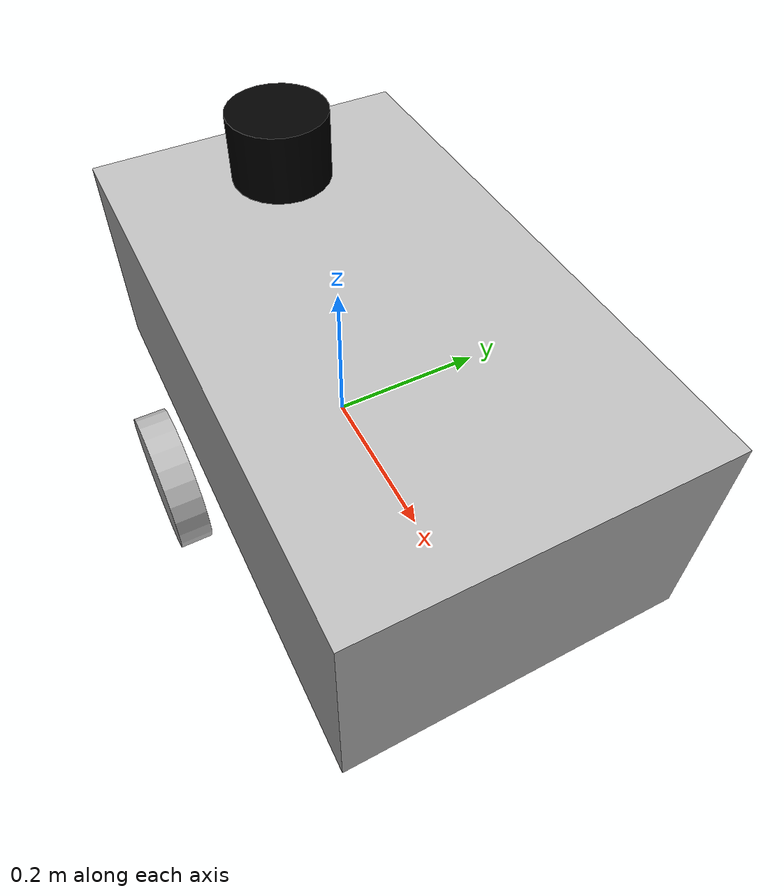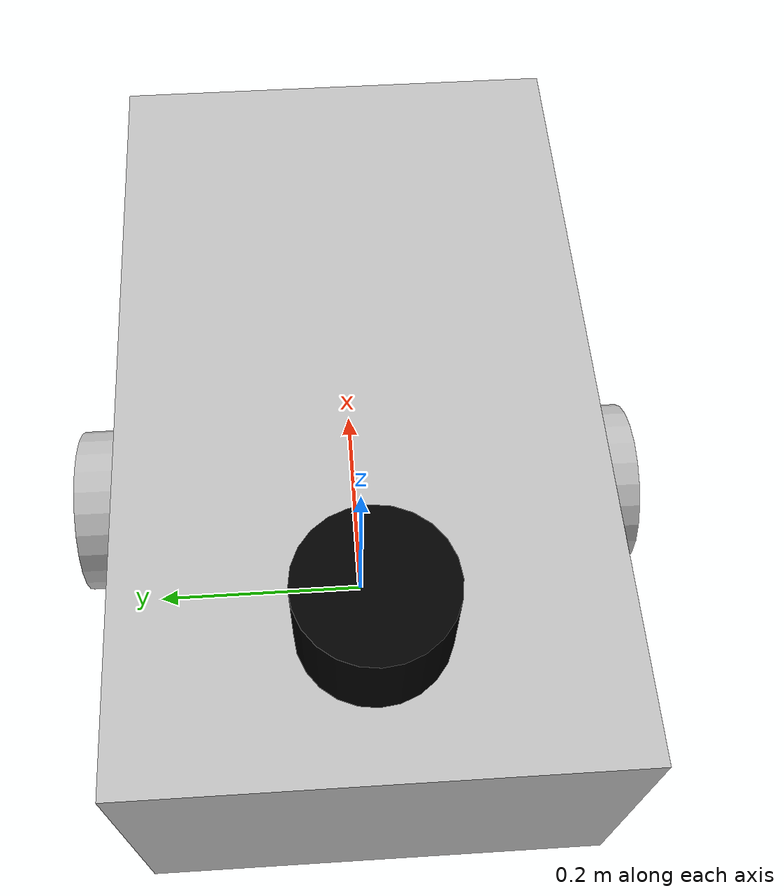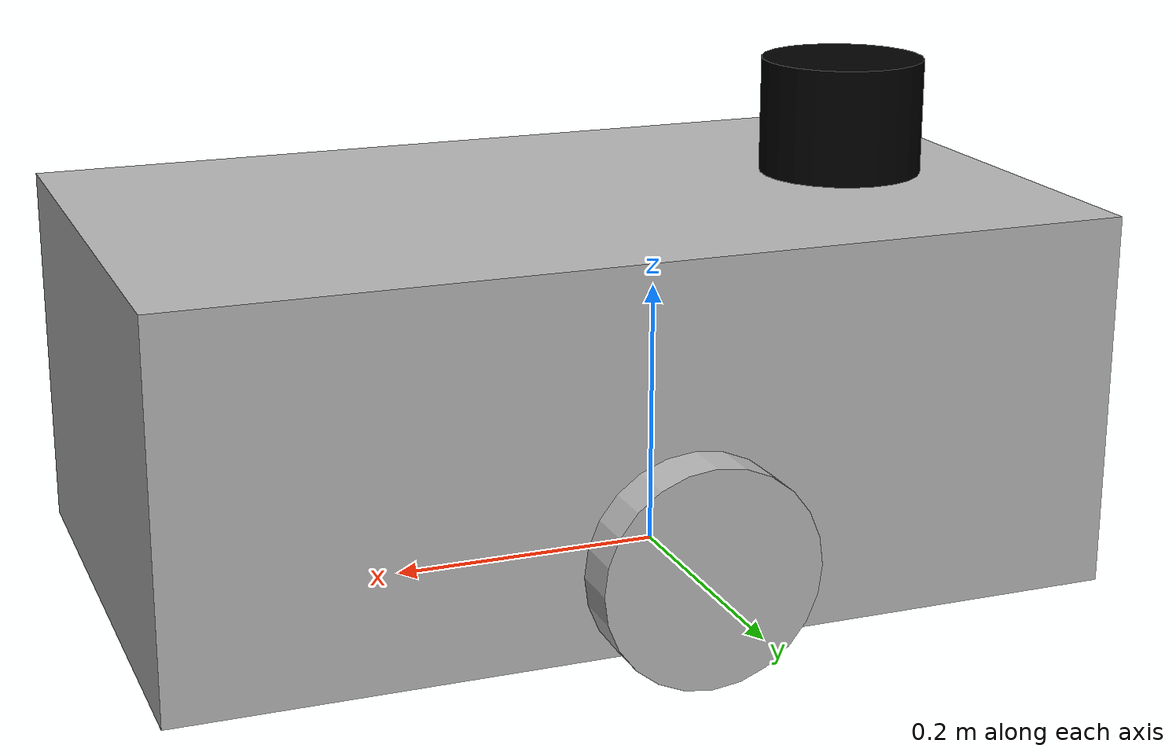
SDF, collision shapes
<?xml version="1.0" encoding="utf-8"?>
<sdf version='1.7'>
  <model name='amr_bot'>
    <link name='base_footprint'>
      <inertial>
        <pose>0.154135 0.097335 -0.030396 0 -0 3.14</pose>
        <mass>17.7243</mass>
        <inertia>
          <ixx>0.151726</ixx>
          <ixy>0</ixy>
          <ixz>0</ixz>
          <iyy>0.209426</iyy>
          <iyz>0</iyz>
          <izz>0.106435</izz>
        </inertia>
      </inertial>
      <collision name='base_footprint_fixed_joint_lump__base_link_collision'>
        <pose>0.075 0 0.14 0 -0 0</pose>
        <geometry>
          <box>
            <size>0.68 0.4 0.27</size>
          </box>
        </geometry>
      </collision>
      <visual name='base_footprint_fixed_joint_lump__base_link_visual'>
        <pose>0 -0.031 0 0 -0 0</pose>
        <geometry>
          <mesh>
            <scale>1 1 1</scale>
            <uri>model://amr_bot/meshes/base_link.STL</uri>
          </mesh>
        </geometry>
      </visual>
    </link>

    <!-- ********** LIDAR ***********    -->
    <link name="lidar_link">
      <inertial>
        <pose>-0.15 0 0.31 0 0 0</pose>
        <inertia>
          <ixx>0.001</ixx>
          <ixy>0.000</ixy>
          <ixz>0.000</ixz>
          <iyy>0.001</iyy>
          <iyz>0.000</iyz>
          <izz>0.001</izz>
        </inertia>
        <mass>0.114</mass>
      </inertial>

      <collision name="lidar_collision">
        <pose>-0.15 0 0.31 0 0 0</pose>
        <geometry>
          <cylinder>
            <radius>0.06</radius>
            <length>0.1</length>
          </cylinder>
        </geometry>
      </collision>

      <visual name="lidar_visual">
        <pose>-0.15 0 0.31 0 0 0</pose>
        <geometry>
          <cylinder>
            <radius>0.06</radius>
            <length>0.1</length>
          </cylinder>
        </geometry>
        <material>
          <ambient>0.0 0.0 0.0 1.0</ambient>
          <diffuse>0.0 0.0 0.0 1.0</diffuse>
          <specular>0.0 0.0 0.0 1.0</specular>
          <emissive>0.0 0.0 0.0 1.0</emissive>
        </material>
      </visual>

      <sensor name="lidar" type="ray">
        <pose>-0.15 0 0.5 0 0 3.14</pose>
        <always_on>true</always_on>
        <visualize>true</visualize>
        <update_rate>5</update_rate>
        <ray>
          <scan>
            <horizontal>
              <samples>120</samples>
              <resolution>1.000000</resolution>
              <min_angle>-3.14159</min_angle>
              <max_angle>3.14159</max_angle>
            </horizontal>
          </scan>
          <range>
            <min>0.3</min>
            <max>15.0</max>
            <resolution>0.015</resolution>
          </range>
          <noise>
            <type>gaussian</type>
            <mean>0.0</mean>
            <stddev>0.01</stddev>
          </noise>
        </ray>
        <plugin name="scan" filename="libgazebo_ros_ray_sensor.so">
          <ros>
            <remapping>~/out:=scan</remapping>
          </ros>
          <output_type>sensor_msgs/LaserScan</output_type>
          <frame_name>lidar_link</frame_name>
        </plugin>
      </sensor>
    </link>

    <joint name='lidar_joint' type='fixed'>
      <pose relative_to='base_footprint'>0.35 0 1.40 0 0 0</pose>
      <parent>base_footprint</parent>
      <child>lidar_link</child>
    </joint>

    <!-- ********** IMU ***********    -->
    <link name="imu_link">
      <gravity>true</gravity>
      <sensor name="bmb_imu" type="imu">
        <pose>0 0 0.31</pose>
        <always_on>true</always_on>
        <update_rate>100</update_rate>
        <visualize>true</visualize>
        <imu>
          <orientation>
            <x>
              <noise type="gaussian">
                <mean>0.0</mean>
                <stddev>2e-3</stddev>
              </noise>
            </x>
            <y>
              <noise type="gaussian">
                <mean>0.0</mean>
                <stddev>2e-3</stddev>
              </noise>
            </y>
            <z>
              <noise type="gaussian">
                <mean>0.0</mean>
                <stddev>2e-3</stddev>
              </noise>
            </z>
          </orientation>
          <angular_velocity>
            <x>
              <noise type="gaussian">
                <mean>0.0</mean>
                <stddev>2e-4</stddev>
              </noise>
            </x>
            <y>
              <noise type="gaussian">
                <mean>0.0</mean>
                <stddev>2e-4</stddev>
              </noise>
            </y>
            <z>
              <noise type="gaussian">
                <mean>0.0</mean>
                <stddev>2e-4</stddev>
              </noise>
            </z>
          </angular_velocity>
          <linear_acceleration>
            <x>
              <noise type="gaussian">
                <mean>0.0</mean>
                <stddev>1.7e-2</stddev>
              </noise>
            </x>
            <y>
              <noise type="gaussian">
                <mean>0.0</mean>
                <stddev>1.7e-2</stddev>
              </noise>
            </y>
            <z>
              <noise type="gaussian">
                <mean>0.0</mean>
                <stddev>1.7e-2</stddev>
              </noise>
            </z>
          </linear_acceleration>
        </imu>
        <plugin name="basic_mobile_bot_imu" filename="libgazebo_ros_imu_sensor.so">
          <initial_orientation_as_reference>false</initial_orientation_as_reference>
          <frame_name>imu_link</frame_name>
          <ros>
            <namespace>/imu</namespace>
            <remapping>~/out:=data</remapping>
          </ros>
        </plugin>
      </sensor>
    </link>

    <joint name='imu_joint' type='fixed'>
      <pose relative_to='base_footprint'>0.0 0 0.0 0 0 0</pose>
      <parent>base_footprint</parent>
      <child>imu_link</child>
      <axis>
        <xyz>0 1 0</xyz>
        <limit>
          <lower>-1e+16</lower>
          <upper>1e+16</upper>
        </limit>
        <dynamics>
          <spring_reference>0</spring_reference>
          <spring_stiffness>0</spring_stiffness>
        </dynamics>
      </axis>
    </joint>

    <joint name='left_joint' type='revolute'>
      <pose relative_to='base_footprint'>0.064918 -0.2 0.0767 0 -0 3.14</pose>
      <parent>base_footprint</parent>
      <child>wheel_l</child>
      <axis>
        <xyz>0 1 0</xyz>
        <limit>
          <effort>30</effort>
          <velocity>5</velocity>
        </limit>
        <dynamics>
          <spring_reference>0</spring_reference>
          <spring_stiffness>0</spring_stiffness>
        </dynamics>
      </axis>
    </joint>
    <link name='wheel_l'>
      <pose relative_to='left_joint'>0 0 0 0 0 0</pose>
      <inertial>
        <pose>0 0 0 0 -0 0</pose>
        <mass>1.1541</mass>
        <inertia>
          <ixx>0.0029866</ixx>
          <ixy>0</ixy>
          <ixz>0</ixz>
          <iyy>0.0016967</iyy>
          <iyz>0</iyz>
          <izz>0.0016788</izz>
        </inertia>
      </inertial>
      <collision name='wheel_l_collision'>
        <pose>0 0.042 0 1.57 -0 0</pose>
        <geometry>
          <cylinder>
            <length>0.035</length>
            <radius>0.0767</radius>
          </cylinder>
        </geometry>
      </collision>
      <visual name='wheel_l_visual'>
        <pose>0 0 0 0 -0 1.57</pose>
        <geometry>
          <mesh>
            <scale>1 1 1</scale>
            <uri>model://amr_bot/meshes/Wheel_2.STL</uri>
          </mesh>
        </geometry>
      </visual>
    </link>
    <joint name='right_joint' type='revolute'>
      <pose relative_to='base_footprint'>0.064918 0.2 0.0767 0 -0 0</pose>
      <parent>base_footprint</parent>
      <child>wheel_r</child>
      <axis>
        <xyz>0 -1 0</xyz>
        <limit>
          <effort>30</effort>
          <velocity>5</velocity>
        </limit>
        <dynamics>
          <spring_reference>0</spring_reference>
          <spring_stiffness>0</spring_stiffness>
        </dynamics>
      </axis>
    </joint>
    <link name='wheel_r'>
      <pose relative_to='right_joint'>0 0 0 0 -0 0</pose>
      <inertial>
        <pose>0 0 0 0 -0 0</pose>
        <mass>1.1541</mass>
        <inertia>
          <ixx>0.0029866</ixx>
          <ixy>0</ixy>
          <ixz>0</ixz>
          <iyy>0.0016967</iyy>
          <iyz>0</iyz>
          <izz>0.0016788</izz>
        </inertia>
      </inertial>
      <collision name='wheel_r_collision'>
        <pose>0 0.042 0 1.57 -0 0</pose>
        <geometry>
          <cylinder>
            <length>0.035</length>
            <radius>0.0767</radius>
          </cylinder>
        </geometry>
      </collision>
      <visual name='wheel_r_visual'>
        <pose>0 0 0 0 -0 1.57</pose>
        <geometry>
          <mesh>
            <scale>1 1 1</scale>
            <uri>model://amr_bot/meshes/Wheel_2.STL</uri>
          </mesh>
        </geometry>
      </visual>
    </link>

    <plugin name="basic_mobile_bot_diff_drive" filename="libgazebo_ros_diff_drive.so">
      <update_rate>30</update_rate>
      <!-- wheels -->
      <left_joint>left_joint</left_joint>
      <right_joint>right_joint</right_joint>
      <!-- kinematics -->
      <wheel_separation>0.4</wheel_separation>
      <wheel_diameter>0.1534</wheel_diameter>
      <!-- limits -->
      <max_wheel_torque>20</max_wheel_torque>
      <max_wheel_acceleration>1.0</max_wheel_acceleration>
      <!-- Receive velocity commands on this ROS topic -->
      <command_topic>cmd_vel</command_topic>
      <!-- output -->
      <!-- When false, publish no wheel odometry data to a ROS topic -->
      <publish_odom>true</publish_odom>
      <!-- When true, publish coordinate transform from odom to base_footprint -->
      <!-- I usually use the robot_localization package to publish this transform -->
      <publish_odom_tf>false</publish_odom_tf>
      <!-- When true, publish coordinate transform from base_link to the wheels -->
      <!-- The robot_state_publisher package is often used to publish this transform -->
      <publish_wheel_tf>false</publish_wheel_tf>
      <odometry_topic>odom</odometry_topic>
      <odometry_frame>odom</odometry_frame>
      <robot_base_frame>base_footprint</robot_base_frame>
      <!-- Odometry source, 0 for ENCODER, 1 for WORLD, defaults to WORLD -->
      <odometry_source>1</odometry_source>
      <!-- Change the ROS topic we will publish the odometry data to -->
      <ros>
        <remapping>odom:=wheel/odometry</remapping>
      </ros>
    </plugin>

    <plugin name='cad_assembly_amr_joint_state' filename='libgazebo_ros_joint_state_publisher.so'>
      <ros>
        <remapping>~/out:=joint_states</remapping>
      </ros>
      <update_rate>30</update_rate>
      <joint_name>left_joint</joint_name>
      <joint_name>right_joint</joint_name>
    </plugin>

  </model>
</sdf>
